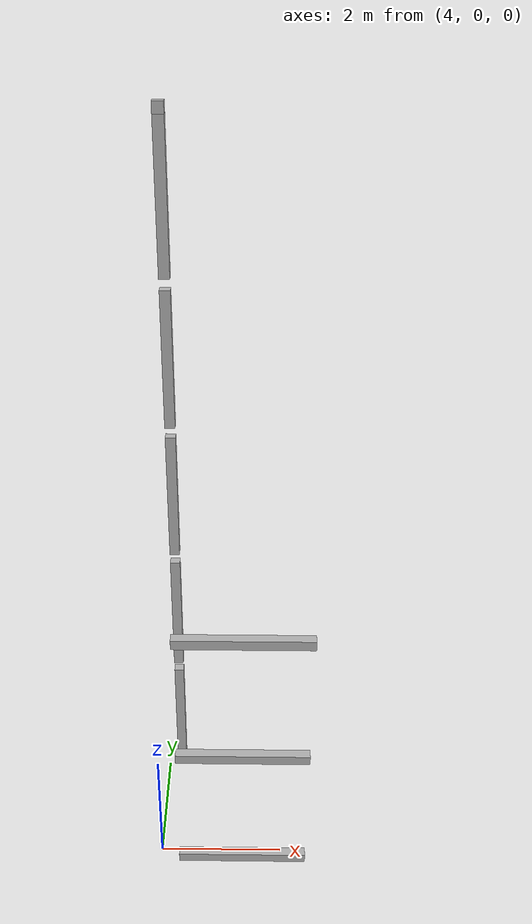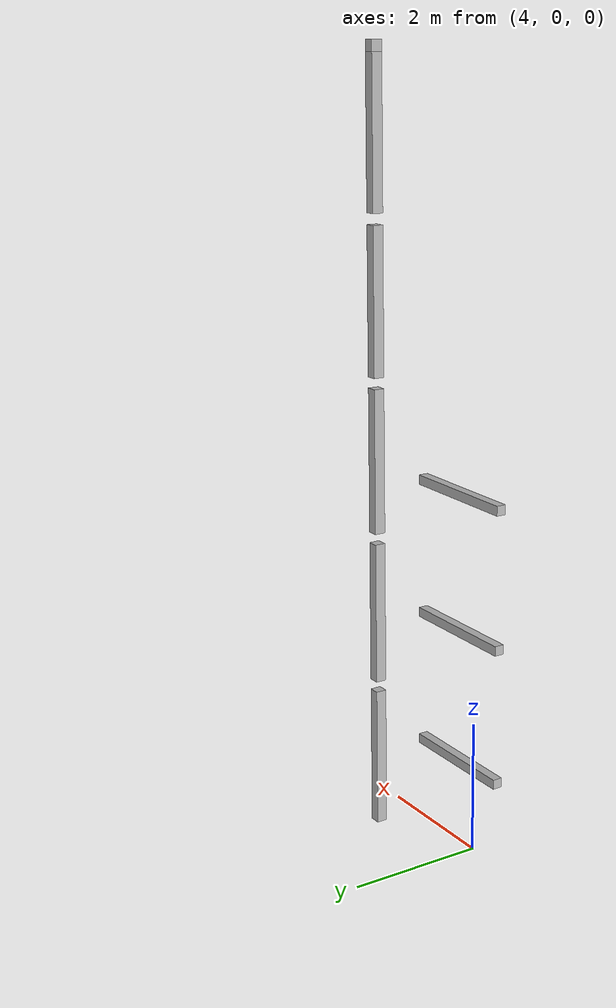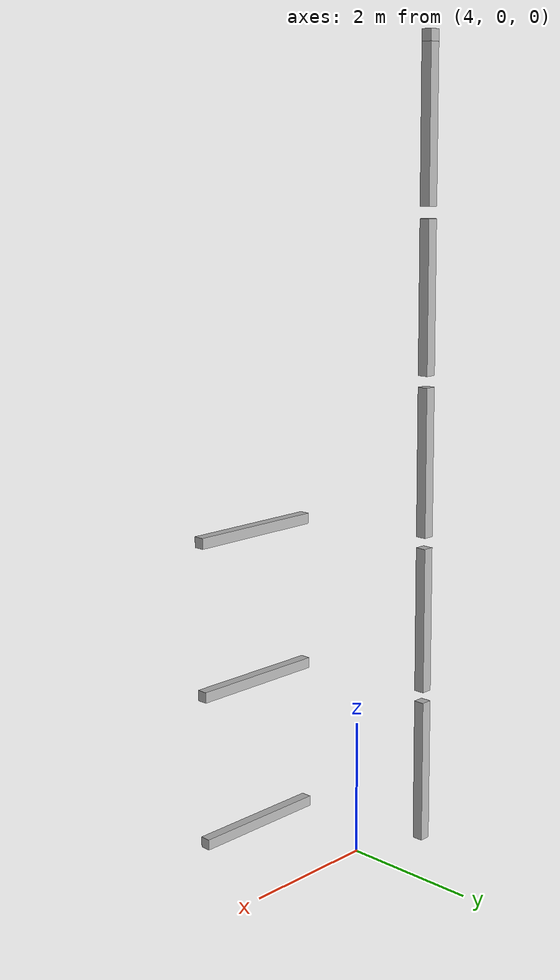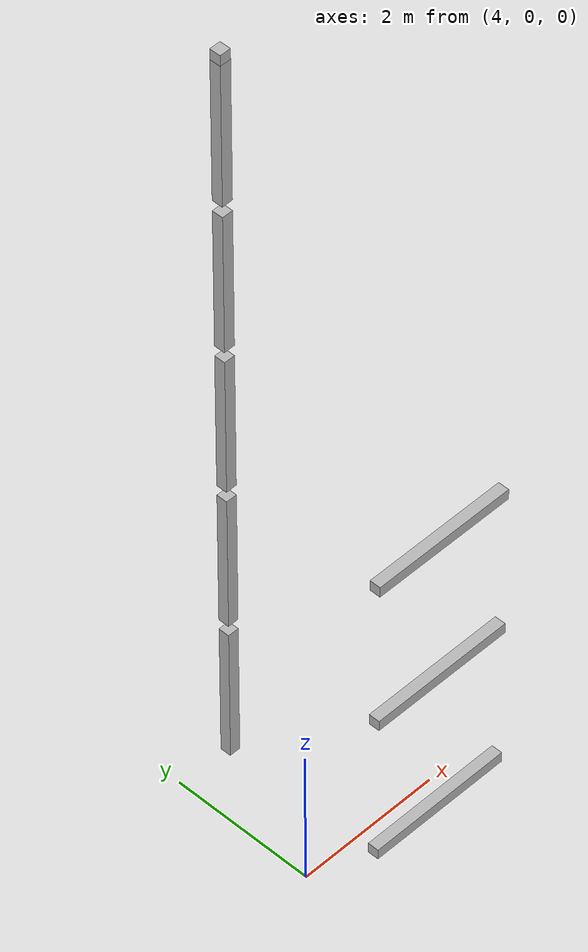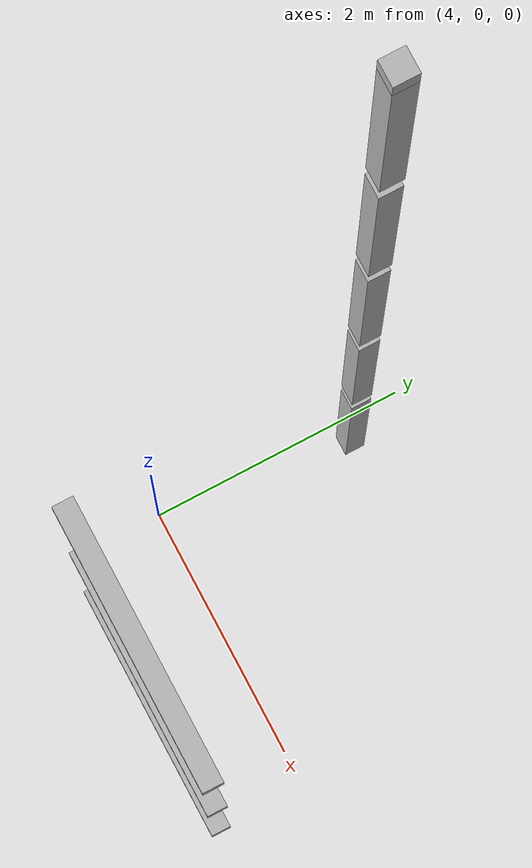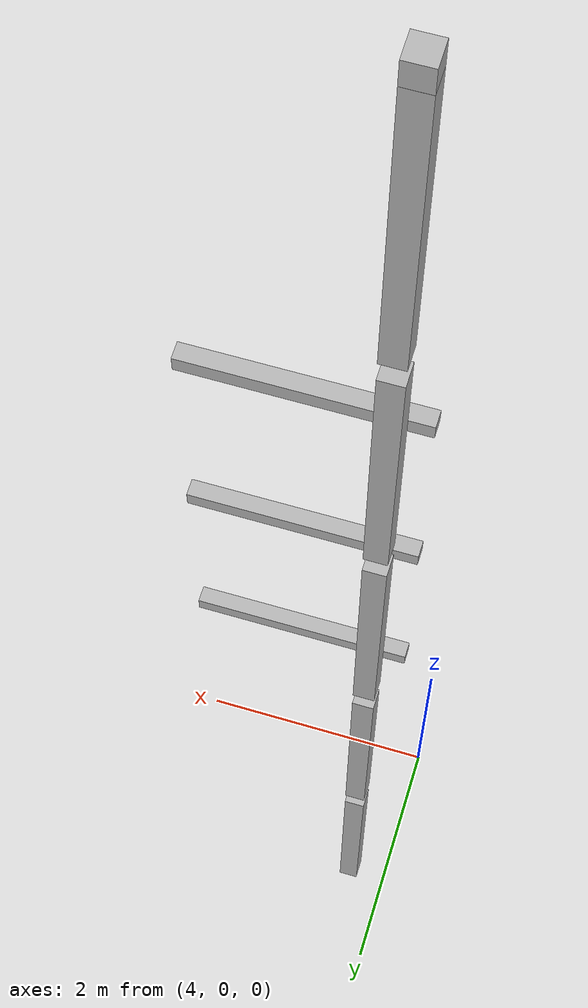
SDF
<sdf version="1.7">
 <world name="default">
  <model name="orthogonal_747_2.000.15_TS">
   <static>1</static>
   <link name="x_link_1_2_5">
    <inertial>
     <mass>1</mass>
     <inertia>
      <ixx>0.166667</ixx>
      <ixy>0</ixy>
      <ixz>0</ixz>
      <iyy>0.166667</iyy>
      <iyz>0</iyz>
      <izz>0.166667</izz>
     </inertia>
    </inertial>
    <pose>11.825 4.3 3.225 0 -0 0</pose>
    <visual name="visual_0">
     <laser_retro>1254</laser_retro>
     <geometry><box><size>2 1e-06 0.15</size></box></geometry>
     <material>
      <script><name>Gazebo/Grey</name><uri>file://media/materials/scripts/gazebo.material</uri></script>
      <shader type="pixel"><normal_map>__default__</normal_map></shader>
      <ambient>0.678 0.498 0.659 1</ambient>
      <diffuse>0.7 0.7 0.7 1</diffuse>
      <specular>0.01 0.01 0.01 1</specular>
      <emissive>0 0 0 1</emissive>
     </material>
     <pose>0 -0.075 0 0 -0 0</pose>
     <transparency>1</transparency>
    </visual>
    <visual name="visual_1">
     <laser_retro>1255</laser_retro>
     <geometry><box><size>2 1e-06 0.15</size></box></geometry>
     <material>
      <script><name>Gazebo/Grey</name><uri>file://media/materials/scripts/gazebo.material</uri></script>
      <shader type="pixel"><normal_map>__default__</normal_map></shader>
      <ambient>0.447 0.624 0.812 1</ambient>
      <diffuse>0.7 0.7 0.7 1</diffuse>
      <specular>0.01 0.01 0.01 1</specular>
      <emissive>0 0 0 1</emissive>
     </material>
     <pose>0 0.075 0 0 -0 0</pose>
     <transparency>1</transparency>
    </visual>
    <visual name="visual_2">
     <laser_retro>1256</laser_retro>
     <geometry><box><size>2 0.15 1e-06</size></box></geometry>
     <material>
      <script><name>Gazebo/Grey</name><uri>file://media/materials/scripts/gazebo.material</uri></script>
      <shader type="pixel"><normal_map>__default__</normal_map></shader>
      <ambient>0.988 0.686 0.243 1</ambient>
      <diffuse>0.7 0.7 0.7 1</diffuse>
      <specular>0.01 0.01 0.01 1</specular>
      <emissive>0 0 0 1</emissive>
     </material>
     <pose>0 0 -0.075 0 -0 0</pose>
     <transparency>1</transparency>
    </visual>
    <visual name="visual_3">
     <laser_retro>1257</laser_retro>
     <geometry><box><size>1e-06 0.15 0.15</size></box></geometry>
     <material>
      <script><name>Gazebo/Grey</name><uri>file://media/materials/scripts/gazebo.material</uri></script>
      <shader type="pixel"><normal_map>__default__</normal_map></shader>
      <ambient>0.988 0.914 0.31 1</ambient>
      <diffuse>0.7 0.7 0.7 1</diffuse>
      <specular>0.01 0.01 0.01 1</specular>
      <emissive>0 0 0 1</emissive>
     </material>
     <pose>1 0 0 0 -0 0</pose>
     <transparency>1</transparency>
    </visual>
    <visual name="visual_4">
     <laser_retro>1258</laser_retro>
     <geometry><box><size>2 0.15 1e-06</size></box></geometry>
     <material>
      <script><name>Gazebo/Grey</name><uri>file://media/materials/scripts/gazebo.material</uri></script>
      <shader type="pixel"><normal_map>__default__</normal_map></shader>
      <ambient>0.937 0.161 0.161 1</ambient>
      <diffuse>0.7 0.7 0.7 1</diffuse>
      <specular>0.01 0.01 0.01 1</specular>
      <emissive>0 0 0 1</emissive>
     </material>
     <pose>0 0 0.075 0 -0 0</pose>
     <transparency>1</transparency>
    </visual>
    <visual name="visual_5">
     <laser_retro>1259</laser_retro>
     <geometry><box><size>1e-06 0.15 0.15</size></box></geometry>
     <material>
      <script><name>Gazebo/Grey</name><uri>file://media/materials/scripts/gazebo.material</uri></script>
      <shader type="pixel"><normal_map>__default__</normal_map></shader>
      <ambient>0.541 0.886 0.204 1</ambient>
      <diffuse>0.7 0.7 0.7 1</diffuse>
      <specular>0.01 0.01 0.01 1</specular>
      <emissive>0 0 0 1</emissive>
     </material>
     <pose>-1 0 0 0 -0 0</pose>
     <transparency>1</transparency>
    </visual>
    <visual name="visual_texture">
     <geometry><box><size>1.9998 0.149985 0.149985</size></box></geometry>
     <material>
      <script>
       <uri>model://BASE_MODELS/simple_block_v2_textured/materials/scripts</uri>
       <uri>model://BASE_MODELS/simple_block_v2_textured/materials/textures</uri>
       <name>metal</name>
      </script>
     </material>
     <laser_retro>1260</laser_retro>
    </visual>
    <collision name="collision">
     <geometry><box><size>2 0.15 0.15</size></box></geometry>
     <surface>
      <friction>
       <ode><mu>1</mu><mu2>1</mu2><fdir1>0 0 0</fdir1><slip1>0</slip1><slip2>0</slip2></ode>
       <torsional>
        <coefficient>1</coefficient>
        <patch_radius>0</patch_radius>
        <surface_radius>0</surface_radius>
        <use_patch_radius>1</use_patch_radius>
        <ode><slip>0</slip></ode>
       </torsional>
      </friction>
      <bounce><restitution_coefficient>0</restitution_coefficient><threshold>1e+06</threshold></bounce>
      <contact>
       <collide_without_contact>0</collide_without_contact>
       <collide_without_contact_bitmask>1</collide_without_contact_bitmask>
       <collide_bitmask>1</collide_bitmask>
       <ode>
        <soft_cfm>0</soft_cfm>
        <soft_erp>0.2</soft_erp>
        <kp>1e+13</kp>
        <kd>1</kd>
        <max_vel>0.01</max_vel>
        <min_depth>0</min_depth>
       </ode>
       <bullet>
        <split_impulse>1</split_impulse>
        <split_impulse_penetration_threshold>-0.01</split_impulse_penetration_threshold>
        <soft_cfm>0</soft_cfm>
        <soft_erp>0.2</soft_erp>
        <kp>1e+13</kp>
        <kd>1</kd>
       </bullet>
      </contact>
     </surface>
    </collision>
   </link>
   <link name="x_link_2_2_5">
    <inertial>
     <mass>1</mass>
     <inertia>
      <ixx>0.166667</ixx>
      <ixy>0</ixy>
      <ixz>0</ixz>
      <iyy>0.166667</iyy>
      <iyz>0</iyz>
      <izz>0.166667</izz>
     </inertia>
    </inertial>
    <pose>11.825 4.3 5.375 0 -0 0</pose>
    <visual name="visual_0">
     <laser_retro>2157</laser_retro>
     <geometry><box><size>2 1e-06 0.15</size></box></geometry>
     <material>
      <script><name>Gazebo/Grey</name><uri>file://media/materials/scripts/gazebo.material</uri></script>
      <shader type="pixel"><normal_map>__default__</normal_map></shader>
      <ambient>0.678 0.498 0.659 1</ambient>
      <diffuse>0.7 0.7 0.7 1</diffuse>
      <specular>0.01 0.01 0.01 1</specular>
      <emissive>0 0 0 1</emissive>
     </material>
     <pose>0 -0.075 0 0 -0 0</pose>
     <transparency>1</transparency>
    </visual>
    <visual name="visual_1">
     <laser_retro>2158</laser_retro>
     <geometry><box><size>2 1e-06 0.15</size></box></geometry>
     <material>
      <script><name>Gazebo/Grey</name><uri>file://media/materials/scripts/gazebo.material</uri></script>
      <shader type="pixel"><normal_map>__default__</normal_map></shader>
      <ambient>0.447 0.624 0.812 1</ambient>
      <diffuse>0.7 0.7 0.7 1</diffuse>
      <specular>0.01 0.01 0.01 1</specular>
      <emissive>0 0 0 1</emissive>
     </material>
     <pose>0 0.075 0 0 -0 0</pose>
     <transparency>1</transparency>
    </visual>
    <visual name="visual_2">
     <laser_retro>2159</laser_retro>
     <geometry><box><size>2 0.15 1e-06</size></box></geometry>
     <material>
      <script><name>Gazebo/Grey</name><uri>file://media/materials/scripts/gazebo.material</uri></script>
      <shader type="pixel"><normal_map>__default__</normal_map></shader>
      <ambient>0.988 0.686 0.243 1</ambient>
      <diffuse>0.7 0.7 0.7 1</diffuse>
      <specular>0.01 0.01 0.01 1</specular>
      <emissive>0 0 0 1</emissive>
     </material>
     <pose>0 0 -0.075 0 -0 0</pose>
     <transparency>1</transparency>
    </visual>
    <visual name="visual_3">
     <laser_retro>2160</laser_retro>
     <geometry><box><size>1e-06 0.15 0.15</size></box></geometry>
     <material>
      <script><name>Gazebo/Grey</name><uri>file://media/materials/scripts/gazebo.material</uri></script>
      <shader type="pixel"><normal_map>__default__</normal_map></shader>
      <ambient>0.988 0.914 0.31 1</ambient>
      <diffuse>0.7 0.7 0.7 1</diffuse>
      <specular>0.01 0.01 0.01 1</specular>
      <emissive>0 0 0 1</emissive>
     </material>
     <pose>1 0 0 0 -0 0</pose>
     <transparency>1</transparency>
    </visual>
    <visual name="visual_4">
     <laser_retro>2161</laser_retro>
     <geometry><box><size>2 0.15 1e-06</size></box></geometry>
     <material>
      <script><name>Gazebo/Grey</name><uri>file://media/materials/scripts/gazebo.material</uri></script>
      <shader type="pixel"><normal_map>__default__</normal_map></shader>
      <ambient>0.937 0.161 0.161 1</ambient>
      <diffuse>0.7 0.7 0.7 1</diffuse>
      <specular>0.01 0.01 0.01 1</specular>
      <emissive>0 0 0 1</emissive>
     </material>
     <pose>0 0 0.075 0 -0 0</pose>
     <transparency>1</transparency>
    </visual>
    <visual name="visual_5">
     <laser_retro>2162</laser_retro>
     <geometry><box><size>1e-06 0.15 0.15</size></box></geometry>
     <material>
      <script><name>Gazebo/Grey</name><uri>file://media/materials/scripts/gazebo.material</uri></script>
      <shader type="pixel"><normal_map>__default__</normal_map></shader>
      <ambient>0.541 0.886 0.204 1</ambient>
      <diffuse>0.7 0.7 0.7 1</diffuse>
      <specular>0.01 0.01 0.01 1</specular>
      <emissive>0 0 0 1</emissive>
     </material>
     <pose>-1 0 0 0 -0 0</pose>
     <transparency>1</transparency>
    </visual>
    <visual name="visual_texture">
     <geometry><box><size>1.9998 0.149985 0.149985</size></box></geometry>
     <material>
      <script>
       <uri>model://BASE_MODELS/simple_block_v2_textured/materials/scripts</uri>
       <uri>model://BASE_MODELS/simple_block_v2_textured/materials/textures</uri>
       <name>metal</name>
      </script>
     </material>
     <laser_retro>2163</laser_retro>
    </visual>
    <collision name="collision">
     <geometry><box><size>2 0.15 0.15</size></box></geometry>
     <surface>
      <friction>
       <ode><mu>1</mu><mu2>1</mu2><fdir1>0 0 0</fdir1><slip1>0</slip1><slip2>0</slip2></ode>
       <torsional>
        <coefficient>1</coefficient>
        <patch_radius>0</patch_radius>
        <surface_radius>0</surface_radius>
        <use_patch_radius>1</use_patch_radius>
        <ode><slip>0</slip></ode>
       </torsional>
      </friction>
      <bounce><restitution_coefficient>0</restitution_coefficient><threshold>1e+06</threshold></bounce>
      <contact>
       <collide_without_contact>0</collide_without_contact>
       <collide_without_contact_bitmask>1</collide_without_contact_bitmask>
       <collide_bitmask>1</collide_bitmask>
       <ode>
        <soft_cfm>0</soft_cfm>
        <soft_erp>0.2</soft_erp>
        <kp>1e+13</kp>
        <kd>1</kd>
        <max_vel>0.01</max_vel>
        <min_depth>0</min_depth>
       </ode>
       <bullet>
        <split_impulse>1</split_impulse>
        <split_impulse_penetration_threshold>-0.01</split_impulse_penetration_threshold>
        <soft_cfm>0</soft_cfm>
        <soft_erp>0.2</soft_erp>
        <kp>1e+13</kp>
        <kd>1</kd>
       </bullet>
      </contact>
     </surface>
    </collision>
   </link>
   <link name="z_link_2_3_5">
    <inertial>
     <mass>1</mass>
     <inertia>
      <ixx>0.166667</ixx>
      <ixy>0</ixy>
      <ixz>0</ixz>
      <iyy>0.166667</iyy>
      <iyz>0</iyz>
      <izz>0.166667</izz>
     </inertia>
    </inertial>
    <pose>10.75 6.45 4.3 0 -0 0</pose>
    <visual name="visual_0">
     <laser_retro>2346</laser_retro>
     <geometry><box><size>0.15 1e-06 2</size></box></geometry>
     <material>
      <script><name>Gazebo/Grey</name><uri>file://media/materials/scripts/gazebo.material</uri></script>
      <shader type="pixel"><normal_map>__default__</normal_map></shader>
      <ambient>0.678 0.498 0.659 1</ambient>
      <diffuse>0.7 0.7 0.7 1</diffuse>
      <specular>0.01 0.01 0.01 1</specular>
      <emissive>0 0 0 1</emissive>
     </material>
     <pose>0 -0.075 0 0 -0 0</pose>
     <transparency>1</transparency>
    </visual>
    <visual name="visual_1">
     <laser_retro>2347</laser_retro>
     <geometry><box><size>0.15 1e-06 2</size></box></geometry>
     <material>
      <script><name>Gazebo/Grey</name><uri>file://media/materials/scripts/gazebo.material</uri></script>
      <shader type="pixel"><normal_map>__default__</normal_map></shader>
      <ambient>0.447 0.624 0.812 1</ambient>
      <diffuse>0.7 0.7 0.7 1</diffuse>
      <specular>0.01 0.01 0.01 1</specular>
      <emissive>0 0 0 1</emissive>
     </material>
     <pose>0 0.075 0 0 -0 0</pose>
     <transparency>1</transparency>
    </visual>
    <visual name="visual_2">
     <laser_retro>2348</laser_retro>
     <geometry><box><size>0.15 0.15 1e-06</size></box></geometry>
     <material>
      <script><name>Gazebo/Grey</name><uri>file://media/materials/scripts/gazebo.material</uri></script>
      <shader type="pixel"><normal_map>__default__</normal_map></shader>
      <ambient>0.988 0.686 0.243 1</ambient>
      <diffuse>0.7 0.7 0.7 1</diffuse>
      <specular>0.01 0.01 0.01 1</specular>
      <emissive>0 0 0 1</emissive>
     </material>
     <pose>0 0 -1 0 -0 0</pose>
     <transparency>1</transparency>
    </visual>
    <visual name="visual_3">
     <laser_retro>2349</laser_retro>
     <geometry><box><size>1e-06 0.15 2</size></box></geometry>
     <material>
      <script><name>Gazebo/Grey</name><uri>file://media/materials/scripts/gazebo.material</uri></script>
      <shader type="pixel"><normal_map>__default__</normal_map></shader>
      <ambient>0.988 0.914 0.31 1</ambient>
      <diffuse>0.7 0.7 0.7 1</diffuse>
      <specular>0.01 0.01 0.01 1</specular>
      <emissive>0 0 0 1</emissive>
     </material>
     <pose>0.075 0 0 0 -0 0</pose>
     <transparency>1</transparency>
    </visual>
    <visual name="visual_4">
     <laser_retro>2350</laser_retro>
     <geometry><box><size>0.15 0.15 1e-06</size></box></geometry>
     <material>
      <script><name>Gazebo/Grey</name><uri>file://media/materials/scripts/gazebo.material</uri></script>
      <shader type="pixel"><normal_map>__default__</normal_map></shader>
      <ambient>0.937 0.161 0.161 1</ambient>
      <diffuse>0.7 0.7 0.7 1</diffuse>
      <specular>0.01 0.01 0.01 1</specular>
      <emissive>0 0 0 1</emissive>
     </material>
     <pose>0 0 1 0 -0 0</pose>
     <transparency>1</transparency>
    </visual>
    <visual name="visual_5">
     <laser_retro>2351</laser_retro>
     <geometry><box><size>1e-06 0.15 2</size></box></geometry>
     <material>
      <script><name>Gazebo/Grey</name><uri>file://media/materials/scripts/gazebo.material</uri></script>
      <shader type="pixel"><normal_map>__default__</normal_map></shader>
      <ambient>0.541 0.886 0.204 1</ambient>
      <diffuse>0.7 0.7 0.7 1</diffuse>
      <specular>0.01 0.01 0.01 1</specular>
      <emissive>0 0 0 1</emissive>
     </material>
     <pose>-0.075 0 0 0 -0 0</pose>
     <transparency>1</transparency>
    </visual>
    <visual name="visual_texture">
     <geometry><box><size>0.149985 0.149985 1.9998</size></box></geometry>
     <material>
      <script>
       <uri>model://BASE_MODELS/simple_block_v2_textured/materials/scripts</uri>
       <uri>model://BASE_MODELS/simple_block_v2_textured/materials/textures</uri>
       <name>metal</name>
      </script>
     </material>
     <laser_retro>2352</laser_retro>
    </visual>
    <collision name="collision">
     <geometry><box><size>0.15 0.15 2</size></box></geometry>
     <surface>
      <friction>
       <ode><mu>1</mu><mu2>1</mu2><fdir1>0 0 0</fdir1><slip1>0</slip1><slip2>0</slip2></ode>
       <torsional>
        <coefficient>1</coefficient>
        <patch_radius>0</patch_radius>
        <surface_radius>0</surface_radius>
        <use_patch_radius>1</use_patch_radius>
        <ode><slip>0</slip></ode>
       </torsional>
      </friction>
      <bounce><restitution_coefficient>0</restitution_coefficient><threshold>1e+06</threshold></bounce>
      <contact>
       <collide_without_contact>0</collide_without_contact>
       <collide_without_contact_bitmask>1</collide_without_contact_bitmask>
       <collide_bitmask>1</collide_bitmask>
       <ode>
        <soft_cfm>0</soft_cfm>
        <soft_erp>0.2</soft_erp>
        <kp>1e+13</kp>
        <kd>1</kd>
        <max_vel>0.01</max_vel>
        <min_depth>0</min_depth>
       </ode>
       <bullet>
        <split_impulse>1</split_impulse>
        <split_impulse_penetration_threshold>-0.01</split_impulse_penetration_threshold>
        <soft_cfm>0</soft_cfm>
        <soft_erp>0.2</soft_erp>
        <kp>1e+13</kp>
        <kd>1</kd>
       </bullet>
      </contact>
     </surface>
    </collision>
   </link>
   <link name="x_link_3_2_5">
    <inertial>
     <mass>1</mass>
     <inertia>
      <ixx>0.166667</ixx>
      <ixy>0</ixy>
      <ixz>0</ixz>
      <iyy>0.166667</iyy>
      <iyz>0</iyz>
      <izz>0.166667</izz>
     </inertia>
    </inertial>
    <pose>11.825 4.3 7.525 0 -0 0</pose>
    <visual name="visual_0">
     <laser_retro>3060</laser_retro>
     <geometry><box><size>2 1e-06 0.15</size></box></geometry>
     <material>
      <script><name>Gazebo/Grey</name><uri>file://media/materials/scripts/gazebo.material</uri></script>
      <shader type="pixel"><normal_map>__default__</normal_map></shader>
      <ambient>0.678 0.498 0.659 1</ambient>
      <diffuse>0.7 0.7 0.7 1</diffuse>
      <specular>0.01 0.01 0.01 1</specular>
      <emissive>0 0 0 1</emissive>
     </material>
     <pose>0 -0.075 0 0 -0 0</pose>
     <transparency>1</transparency>
    </visual>
    <visual name="visual_1">
     <laser_retro>3061</laser_retro>
     <geometry><box><size>2 1e-06 0.15</size></box></geometry>
     <material>
      <script><name>Gazebo/Grey</name><uri>file://media/materials/scripts/gazebo.material</uri></script>
      <shader type="pixel"><normal_map>__default__</normal_map></shader>
      <ambient>0.447 0.624 0.812 1</ambient>
      <diffuse>0.7 0.7 0.7 1</diffuse>
      <specular>0.01 0.01 0.01 1</specular>
      <emissive>0 0 0 1</emissive>
     </material>
     <pose>0 0.075 0 0 -0 0</pose>
     <transparency>1</transparency>
    </visual>
    <visual name="visual_2">
     <laser_retro>3062</laser_retro>
     <geometry><box><size>2 0.15 1e-06</size></box></geometry>
     <material>
      <script><name>Gazebo/Grey</name><uri>file://media/materials/scripts/gazebo.material</uri></script>
      <shader type="pixel"><normal_map>__default__</normal_map></shader>
      <ambient>0.988 0.686 0.243 1</ambient>
      <diffuse>0.7 0.7 0.7 1</diffuse>
      <specular>0.01 0.01 0.01 1</specular>
      <emissive>0 0 0 1</emissive>
     </material>
     <pose>0 0 -0.075 0 -0 0</pose>
     <transparency>1</transparency>
    </visual>
    <visual name="visual_3">
     <laser_retro>3063</laser_retro>
     <geometry><box><size>1e-06 0.15 0.15</size></box></geometry>
     <material>
      <script><name>Gazebo/Grey</name><uri>file://media/materials/scripts/gazebo.material</uri></script>
      <shader type="pixel"><normal_map>__default__</normal_map></shader>
      <ambient>0.988 0.914 0.31 1</ambient>
      <diffuse>0.7 0.7 0.7 1</diffuse>
      <specular>0.01 0.01 0.01 1</specular>
      <emissive>0 0 0 1</emissive>
     </material>
     <pose>1 0 0 0 -0 0</pose>
     <transparency>1</transparency>
    </visual>
    <visual name="visual_4">
     <laser_retro>3064</laser_retro>
     <geometry><box><size>2 0.15 1e-06</size></box></geometry>
     <material>
      <script><name>Gazebo/Grey</name><uri>file://media/materials/scripts/gazebo.material</uri></script>
      <shader type="pixel"><normal_map>__default__</normal_map></shader>
      <ambient>0.937 0.161 0.161 1</ambient>
      <diffuse>0.7 0.7 0.7 1</diffuse>
      <specular>0.01 0.01 0.01 1</specular>
      <emissive>0 0 0 1</emissive>
     </material>
     <pose>0 0 0.075 0 -0 0</pose>
     <transparency>1</transparency>
    </visual>
    <visual name="visual_5">
     <laser_retro>3065</laser_retro>
     <geometry><box><size>1e-06 0.15 0.15</size></box></geometry>
     <material>
      <script><name>Gazebo/Grey</name><uri>file://media/materials/scripts/gazebo.material</uri></script>
      <shader type="pixel"><normal_map>__default__</normal_map></shader>
      <ambient>0.541 0.886 0.204 1</ambient>
      <diffuse>0.7 0.7 0.7 1</diffuse>
      <specular>0.01 0.01 0.01 1</specular>
      <emissive>0 0 0 1</emissive>
     </material>
     <pose>-1 0 0 0 -0 0</pose>
     <transparency>1</transparency>
    </visual>
    <visual name="visual_texture">
     <geometry><box><size>1.9998 0.149985 0.149985</size></box></geometry>
     <material>
      <script>
       <uri>model://BASE_MODELS/simple_block_v2_textured/materials/scripts</uri>
       <uri>model://BASE_MODELS/simple_block_v2_textured/materials/textures</uri>
       <name>metal</name>
      </script>
     </material>
     <laser_retro>3066</laser_retro>
    </visual>
    <collision name="collision">
     <geometry><box><size>2 0.15 0.15</size></box></geometry>
     <surface>
      <friction>
       <ode><mu>1</mu><mu2>1</mu2><fdir1>0 0 0</fdir1><slip1>0</slip1><slip2>0</slip2></ode>
       <torsional>
        <coefficient>1</coefficient>
        <patch_radius>0</patch_radius>
        <surface_radius>0</surface_radius>
        <use_patch_radius>1</use_patch_radius>
        <ode><slip>0</slip></ode>
       </torsional>
      </friction>
      <bounce><restitution_coefficient>0</restitution_coefficient><threshold>1e+06</threshold></bounce>
      <contact>
       <collide_without_contact>0</collide_without_contact>
       <collide_without_contact_bitmask>1</collide_without_contact_bitmask>
       <collide_bitmask>1</collide_bitmask>
       <ode>
        <soft_cfm>0</soft_cfm>
        <soft_erp>0.2</soft_erp>
        <kp>1e+13</kp>
        <kd>1</kd>
        <max_vel>0.01</max_vel>
        <min_depth>0</min_depth>
       </ode>
       <bullet>
        <split_impulse>1</split_impulse>
        <split_impulse_penetration_threshold>-0.01</split_impulse_penetration_threshold>
        <soft_cfm>0</soft_cfm>
        <soft_erp>0.2</soft_erp>
        <kp>1e+13</kp>
        <kd>1</kd>
       </bullet>
      </contact>
     </surface>
    </collision>
   </link>
   <link name="z_link_3_3_5">
    <inertial>
     <mass>1</mass>
     <inertia>
      <ixx>0.166667</ixx>
      <ixy>0</ixy>
      <ixz>0</ixz>
      <iyy>0.166667</iyy>
      <iyz>0</iyz>
      <izz>0.166667</izz>
     </inertia>
    </inertial>
    <pose>10.75 6.45 6.45 0 -0 0</pose>
    <visual name="visual_0">
     <laser_retro>3249</laser_retro>
     <geometry><box><size>0.15 1e-06 2</size></box></geometry>
     <material>
      <script><name>Gazebo/Grey</name><uri>file://media/materials/scripts/gazebo.material</uri></script>
      <shader type="pixel"><normal_map>__default__</normal_map></shader>
      <ambient>0.678 0.498 0.659 1</ambient>
      <diffuse>0.7 0.7 0.7 1</diffuse>
      <specular>0.01 0.01 0.01 1</specular>
      <emissive>0 0 0 1</emissive>
     </material>
     <pose>0 -0.075 0 0 -0 0</pose>
     <transparency>1</transparency>
    </visual>
    <visual name="visual_1">
     <laser_retro>3250</laser_retro>
     <geometry><box><size>0.15 1e-06 2</size></box></geometry>
     <material>
      <script><name>Gazebo/Grey</name><uri>file://media/materials/scripts/gazebo.material</uri></script>
      <shader type="pixel"><normal_map>__default__</normal_map></shader>
      <ambient>0.447 0.624 0.812 1</ambient>
      <diffuse>0.7 0.7 0.7 1</diffuse>
      <specular>0.01 0.01 0.01 1</specular>
      <emissive>0 0 0 1</emissive>
     </material>
     <pose>0 0.075 0 0 -0 0</pose>
     <transparency>1</transparency>
    </visual>
    <visual name="visual_2">
     <laser_retro>3251</laser_retro>
     <geometry><box><size>0.15 0.15 1e-06</size></box></geometry>
     <material>
      <script><name>Gazebo/Grey</name><uri>file://media/materials/scripts/gazebo.material</uri></script>
      <shader type="pixel"><normal_map>__default__</normal_map></shader>
      <ambient>0.988 0.686 0.243 1</ambient>
      <diffuse>0.7 0.7 0.7 1</diffuse>
      <specular>0.01 0.01 0.01 1</specular>
      <emissive>0 0 0 1</emissive>
     </material>
     <pose>0 0 -1 0 -0 0</pose>
     <transparency>1</transparency>
    </visual>
    <visual name="visual_3">
     <laser_retro>3252</laser_retro>
     <geometry><box><size>1e-06 0.15 2</size></box></geometry>
     <material>
      <script><name>Gazebo/Grey</name><uri>file://media/materials/scripts/gazebo.material</uri></script>
      <shader type="pixel"><normal_map>__default__</normal_map></shader>
      <ambient>0.988 0.914 0.31 1</ambient>
      <diffuse>0.7 0.7 0.7 1</diffuse>
      <specular>0.01 0.01 0.01 1</specular>
      <emissive>0 0 0 1</emissive>
     </material>
     <pose>0.075 0 0 0 -0 0</pose>
     <transparency>1</transparency>
    </visual>
    <visual name="visual_4">
     <laser_retro>3253</laser_retro>
     <geometry><box><size>0.15 0.15 1e-06</size></box></geometry>
     <material>
      <script><name>Gazebo/Grey</name><uri>file://media/materials/scripts/gazebo.material</uri></script>
      <shader type="pixel"><normal_map>__default__</normal_map></shader>
      <ambient>0.937 0.161 0.161 1</ambient>
      <diffuse>0.7 0.7 0.7 1</diffuse>
      <specular>0.01 0.01 0.01 1</specular>
      <emissive>0 0 0 1</emissive>
     </material>
     <pose>0 0 1 0 -0 0</pose>
     <transparency>1</transparency>
    </visual>
    <visual name="visual_5">
     <laser_retro>3254</laser_retro>
     <geometry><box><size>1e-06 0.15 2</size></box></geometry>
     <material>
      <script><name>Gazebo/Grey</name><uri>file://media/materials/scripts/gazebo.material</uri></script>
      <shader type="pixel"><normal_map>__default__</normal_map></shader>
      <ambient>0.541 0.886 0.204 1</ambient>
      <diffuse>0.7 0.7 0.7 1</diffuse>
      <specular>0.01 0.01 0.01 1</specular>
      <emissive>0 0 0 1</emissive>
     </material>
     <pose>-0.075 0 0 0 -0 0</pose>
     <transparency>1</transparency>
    </visual>
    <visual name="visual_texture">
     <geometry><box><size>0.149985 0.149985 1.9998</size></box></geometry>
     <material>
      <script>
       <uri>model://BASE_MODELS/simple_block_v2_textured/materials/scripts</uri>
       <uri>model://BASE_MODELS/simple_block_v2_textured/materials/textures</uri>
       <name>metal</name>
      </script>
     </material>
     <laser_retro>3255</laser_retro>
    </visual>
    <collision name="collision">
     <geometry><box><size>0.15 0.15 2</size></box></geometry>
     <surface>
      <friction>
       <ode><mu>1</mu><mu2>1</mu2><fdir1>0 0 0</fdir1><slip1>0</slip1><slip2>0</slip2></ode>
       <torsional>
        <coefficient>1</coefficient>
        <patch_radius>0</patch_radius>
        <surface_radius>0</surface_radius>
        <use_patch_radius>1</use_patch_radius>
        <ode><slip>0</slip></ode>
       </torsional>
      </friction>
      <bounce><restitution_coefficient>0</restitution_coefficient><threshold>1e+06</threshold></bounce>
      <contact>
       <collide_without_contact>0</collide_without_contact>
       <collide_without_contact_bitmask>1</collide_without_contact_bitmask>
       <collide_bitmask>1</collide_bitmask>
       <ode>
        <soft_cfm>0</soft_cfm>
        <soft_erp>0.2</soft_erp>
        <kp>1e+13</kp>
        <kd>1</kd>
        <max_vel>0.01</max_vel>
        <min_depth>0</min_depth>
       </ode>
       <bullet>
        <split_impulse>1</split_impulse>
        <split_impulse_penetration_threshold>-0.01</split_impulse_penetration_threshold>
        <soft_cfm>0</soft_cfm>
        <soft_erp>0.2</soft_erp>
        <kp>1e+13</kp>
        <kd>1</kd>
       </bullet>
      </contact>
     </surface>
    </collision>
   </link>
   <link name="z_link_4_3_5">
    <inertial>
     <mass>1</mass>
     <inertia>
      <ixx>0.166667</ixx>
      <ixy>0</ixy>
      <ixz>0</ixz>
      <iyy>0.166667</iyy>
      <iyz>0</iyz>
      <izz>0.166667</izz>
     </inertia>
    </inertial>
    <pose>10.75 6.45 8.6 0 -0 0</pose>
    <visual name="visual_0">
     <laser_retro>4152</laser_retro>
     <geometry><box><size>0.15 1e-06 2</size></box></geometry>
     <material>
      <script><name>Gazebo/Grey</name><uri>file://media/materials/scripts/gazebo.material</uri></script>
      <shader type="pixel"><normal_map>__default__</normal_map></shader>
      <ambient>0.678 0.498 0.659 1</ambient>
      <diffuse>0.7 0.7 0.7 1</diffuse>
      <specular>0.01 0.01 0.01 1</specular>
      <emissive>0 0 0 1</emissive>
     </material>
     <pose>0 -0.075 0 0 -0 0</pose>
     <transparency>1</transparency>
    </visual>
    <visual name="visual_1">
     <laser_retro>4153</laser_retro>
     <geometry><box><size>0.15 1e-06 2</size></box></geometry>
     <material>
      <script><name>Gazebo/Grey</name><uri>file://media/materials/scripts/gazebo.material</uri></script>
      <shader type="pixel"><normal_map>__default__</normal_map></shader>
      <ambient>0.447 0.624 0.812 1</ambient>
      <diffuse>0.7 0.7 0.7 1</diffuse>
      <specular>0.01 0.01 0.01 1</specular>
      <emissive>0 0 0 1</emissive>
     </material>
     <pose>0 0.075 0 0 -0 0</pose>
     <transparency>1</transparency>
    </visual>
    <visual name="visual_2">
     <laser_retro>4154</laser_retro>
     <geometry><box><size>0.15 0.15 1e-06</size></box></geometry>
     <material>
      <script><name>Gazebo/Grey</name><uri>file://media/materials/scripts/gazebo.material</uri></script>
      <shader type="pixel"><normal_map>__default__</normal_map></shader>
      <ambient>0.988 0.686 0.243 1</ambient>
      <diffuse>0.7 0.7 0.7 1</diffuse>
      <specular>0.01 0.01 0.01 1</specular>
      <emissive>0 0 0 1</emissive>
     </material>
     <pose>0 0 -1 0 -0 0</pose>
     <transparency>1</transparency>
    </visual>
    <visual name="visual_3">
     <laser_retro>4155</laser_retro>
     <geometry><box><size>1e-06 0.15 2</size></box></geometry>
     <material>
      <script><name>Gazebo/Grey</name><uri>file://media/materials/scripts/gazebo.material</uri></script>
      <shader type="pixel"><normal_map>__default__</normal_map></shader>
      <ambient>0.988 0.914 0.31 1</ambient>
      <diffuse>0.7 0.7 0.7 1</diffuse>
      <specular>0.01 0.01 0.01 1</specular>
      <emissive>0 0 0 1</emissive>
     </material>
     <pose>0.075 0 0 0 -0 0</pose>
     <transparency>1</transparency>
    </visual>
    <visual name="visual_4">
     <laser_retro>4156</laser_retro>
     <geometry><box><size>0.15 0.15 1e-06</size></box></geometry>
     <material>
      <script><name>Gazebo/Grey</name><uri>file://media/materials/scripts/gazebo.material</uri></script>
      <shader type="pixel"><normal_map>__default__</normal_map></shader>
      <ambient>0.937 0.161 0.161 1</ambient>
      <diffuse>0.7 0.7 0.7 1</diffuse>
      <specular>0.01 0.01 0.01 1</specular>
      <emissive>0 0 0 1</emissive>
     </material>
     <pose>0 0 1 0 -0 0</pose>
     <transparency>1</transparency>
    </visual>
    <visual name="visual_5">
     <laser_retro>4157</laser_retro>
     <geometry><box><size>1e-06 0.15 2</size></box></geometry>
     <material>
      <script><name>Gazebo/Grey</name><uri>file://media/materials/scripts/gazebo.material</uri></script>
      <shader type="pixel"><normal_map>__default__</normal_map></shader>
      <ambient>0.541 0.886 0.204 1</ambient>
      <diffuse>0.7 0.7 0.7 1</diffuse>
      <specular>0.01 0.01 0.01 1</specular>
      <emissive>0 0 0 1</emissive>
     </material>
     <pose>-0.075 0 0 0 -0 0</pose>
     <transparency>1</transparency>
    </visual>
    <visual name="visual_texture">
     <geometry><box><size>0.149985 0.149985 1.9998</size></box></geometry>
     <material>
      <script>
       <uri>model://BASE_MODELS/simple_block_v2_textured/materials/scripts</uri>
       <uri>model://BASE_MODELS/simple_block_v2_textured/materials/textures</uri>
       <name>metal</name>
      </script>
     </material>
     <laser_retro>4158</laser_retro>
    </visual>
    <collision name="collision">
     <geometry><box><size>0.15 0.15 2</size></box></geometry>
     <surface>
      <friction>
       <ode><mu>1</mu><mu2>1</mu2><fdir1>0 0 0</fdir1><slip1>0</slip1><slip2>0</slip2></ode>
       <torsional>
        <coefficient>1</coefficient>
        <patch_radius>0</patch_radius>
        <surface_radius>0</surface_radius>
        <use_patch_radius>1</use_patch_radius>
        <ode><slip>0</slip></ode>
       </torsional>
      </friction>
      <bounce><restitution_coefficient>0</restitution_coefficient><threshold>1e+06</threshold></bounce>
      <contact>
       <collide_without_contact>0</collide_without_contact>
       <collide_without_contact_bitmask>1</collide_without_contact_bitmask>
       <collide_bitmask>1</collide_bitmask>
       <ode>
        <soft_cfm>0</soft_cfm>
        <soft_erp>0.2</soft_erp>
        <kp>1e+13</kp>
        <kd>1</kd>
        <max_vel>0.01</max_vel>
        <min_depth>0</min_depth>
       </ode>
       <bullet>
        <split_impulse>1</split_impulse>
        <split_impulse_penetration_threshold>-0.01</split_impulse_penetration_threshold>
        <soft_cfm>0</soft_cfm>
        <soft_erp>0.2</soft_erp>
        <kp>1e+13</kp>
        <kd>1</kd>
       </bullet>
      </contact>
     </surface>
    </collision>
   </link>
   <link name="z_link_5_3_5">
    <inertial>
     <mass>1</mass>
     <inertia>
      <ixx>0.166667</ixx>
      <ixy>0</ixy>
      <ixz>0</ixz>
      <iyy>0.166667</iyy>
      <iyz>0</iyz>
      <izz>0.166667</izz>
     </inertia>
    </inertial>
    <pose>10.75 6.45 10.75 0 -0 0</pose>
    <visual name="visual_0">
     <laser_retro>5055</laser_retro>
     <geometry><box><size>0.15 1e-06 2</size></box></geometry>
     <material>
      <script><name>Gazebo/Grey</name><uri>file://media/materials/scripts/gazebo.material</uri></script>
      <shader type="pixel"><normal_map>__default__</normal_map></shader>
      <ambient>0.678 0.498 0.659 1</ambient>
      <diffuse>0.7 0.7 0.7 1</diffuse>
      <specular>0.01 0.01 0.01 1</specular>
      <emissive>0 0 0 1</emissive>
     </material>
     <pose>0 -0.075 0 0 -0 0</pose>
     <transparency>1</transparency>
    </visual>
    <visual name="visual_1">
     <laser_retro>5056</laser_retro>
     <geometry><box><size>0.15 1e-06 2</size></box></geometry>
     <material>
      <script><name>Gazebo/Grey</name><uri>file://media/materials/scripts/gazebo.material</uri></script>
      <shader type="pixel"><normal_map>__default__</normal_map></shader>
      <ambient>0.447 0.624 0.812 1</ambient>
      <diffuse>0.7 0.7 0.7 1</diffuse>
      <specular>0.01 0.01 0.01 1</specular>
      <emissive>0 0 0 1</emissive>
     </material>
     <pose>0 0.075 0 0 -0 0</pose>
     <transparency>1</transparency>
    </visual>
    <visual name="visual_2">
     <laser_retro>5057</laser_retro>
     <geometry><box><size>0.15 0.15 1e-06</size></box></geometry>
     <material>
      <script><name>Gazebo/Grey</name><uri>file://media/materials/scripts/gazebo.material</uri></script>
      <shader type="pixel"><normal_map>__default__</normal_map></shader>
      <ambient>0.988 0.686 0.243 1</ambient>
      <diffuse>0.7 0.7 0.7 1</diffuse>
      <specular>0.01 0.01 0.01 1</specular>
      <emissive>0 0 0 1</emissive>
     </material>
     <pose>0 0 -1 0 -0 0</pose>
     <transparency>1</transparency>
    </visual>
    <visual name="visual_3">
     <laser_retro>5058</laser_retro>
     <geometry><box><size>1e-06 0.15 2</size></box></geometry>
     <material>
      <script><name>Gazebo/Grey</name><uri>file://media/materials/scripts/gazebo.material</uri></script>
      <shader type="pixel"><normal_map>__default__</normal_map></shader>
      <ambient>0.988 0.914 0.31 1</ambient>
      <diffuse>0.7 0.7 0.7 1</diffuse>
      <specular>0.01 0.01 0.01 1</specular>
      <emissive>0 0 0 1</emissive>
     </material>
     <pose>0.075 0 0 0 -0 0</pose>
     <transparency>1</transparency>
    </visual>
    <visual name="visual_4">
     <laser_retro>5059</laser_retro>
     <geometry><box><size>0.15 0.15 1e-06</size></box></geometry>
     <material>
      <script><name>Gazebo/Grey</name><uri>file://media/materials/scripts/gazebo.material</uri></script>
      <shader type="pixel"><normal_map>__default__</normal_map></shader>
      <ambient>0.937 0.161 0.161 1</ambient>
      <diffuse>0.7 0.7 0.7 1</diffuse>
      <specular>0.01 0.01 0.01 1</specular>
      <emissive>0 0 0 1</emissive>
     </material>
     <pose>0 0 1 0 -0 0</pose>
     <transparency>1</transparency>
    </visual>
    <visual name="visual_5">
     <laser_retro>5060</laser_retro>
     <geometry><box><size>1e-06 0.15 2</size></box></geometry>
     <material>
      <script><name>Gazebo/Grey</name><uri>file://media/materials/scripts/gazebo.material</uri></script>
      <shader type="pixel"><normal_map>__default__</normal_map></shader>
      <ambient>0.541 0.886 0.204 1</ambient>
      <diffuse>0.7 0.7 0.7 1</diffuse>
      <specular>0.01 0.01 0.01 1</specular>
      <emissive>0 0 0 1</emissive>
     </material>
     <pose>-0.075 0 0 0 -0 0</pose>
     <transparency>1</transparency>
    </visual>
    <visual name="visual_texture">
     <geometry><box><size>0.149985 0.149985 1.9998</size></box></geometry>
     <material>
      <script>
       <uri>model://BASE_MODELS/simple_block_v2_textured/materials/scripts</uri>
       <uri>model://BASE_MODELS/simple_block_v2_textured/materials/textures</uri>
       <name>metal</name>
      </script>
     </material>
     <laser_retro>5061</laser_retro>
    </visual>
    <collision name="collision">
     <geometry><box><size>0.15 0.15 2</size></box></geometry>
     <surface>
      <friction>
       <ode><mu>1</mu><mu2>1</mu2><fdir1>0 0 0</fdir1><slip1>0</slip1><slip2>0</slip2></ode>
       <torsional>
        <coefficient>1</coefficient>
        <patch_radius>0</patch_radius>
        <surface_radius>0</surface_radius>
        <use_patch_radius>1</use_patch_radius>
        <ode><slip>0</slip></ode>
       </torsional>
      </friction>
      <bounce><restitution_coefficient>0</restitution_coefficient><threshold>1e+06</threshold></bounce>
      <contact>
       <collide_without_contact>0</collide_without_contact>
       <collide_without_contact_bitmask>1</collide_without_contact_bitmask>
       <collide_bitmask>1</collide_bitmask>
       <ode>
        <soft_cfm>0</soft_cfm>
        <soft_erp>0.2</soft_erp>
        <kp>1e+13</kp>
        <kd>1</kd>
        <max_vel>0.01</max_vel>
        <min_depth>0</min_depth>
       </ode>
       <bullet>
        <split_impulse>1</split_impulse>
        <split_impulse_penetration_threshold>-0.01</split_impulse_penetration_threshold>
        <soft_cfm>0</soft_cfm>
        <soft_erp>0.2</soft_erp>
        <kp>1e+13</kp>
        <kd>1</kd>
       </bullet>
      </contact>
     </surface>
    </collision>
   </link>
   <link name="u_link_6_3_5">
    <inertial>
     <mass>1</mass>
     <inertia>
      <ixx>0.166667</ixx>
      <ixy>0</ixy>
      <ixz>0</ixz>
      <iyy>0.166667</iyy>
      <iyz>0</iyz>
      <izz>0.166667</izz>
     </inertia>
    </inertial>
    <pose>10.75 6.45 13.975 0 -0 0</pose>
    <visual name="visual_0">
     <laser_retro>6070</laser_retro>
     <geometry><box><size>0.15 1e-06 0.15</size></box></geometry>
     <material>
      <script><name>Gazebo/Grey</name><uri>file://media/materials/scripts/gazebo.material</uri></script>
      <shader type="pixel"><normal_map>__default__</normal_map></shader>
      <ambient>0.678 0.498 0.659 1</ambient>
      <diffuse>0.7 0.7 0.7 1</diffuse>
      <specular>0.01 0.01 0.01 1</specular>
      <emissive>0 0 0 1</emissive>
     </material>
     <pose>0 -0.075 0 0 -0 0</pose>
     <transparency>1</transparency>
    </visual>
    <visual name="visual_1">
     <laser_retro>6071</laser_retro>
     <geometry><box><size>0.15 1e-06 0.15</size></box></geometry>
     <material>
      <script><name>Gazebo/Grey</name><uri>file://media/materials/scripts/gazebo.material</uri></script>
      <shader type="pixel"><normal_map>__default__</normal_map></shader>
      <ambient>0.447 0.624 0.812 1</ambient>
      <diffuse>0.7 0.7 0.7 1</diffuse>
      <specular>0.01 0.01 0.01 1</specular>
      <emissive>0 0 0 1</emissive>
     </material>
     <pose>0 0.075 0 0 -0 0</pose>
     <transparency>1</transparency>
    </visual>
    <visual name="visual_2">
     <laser_retro>6072</laser_retro>
     <geometry><box><size>0.15 0.15 1e-06</size></box></geometry>
     <material>
      <script><name>Gazebo/Grey</name><uri>file://media/materials/scripts/gazebo.material</uri></script>
      <shader type="pixel"><normal_map>__default__</normal_map></shader>
      <ambient>0.988 0.686 0.243 1</ambient>
      <diffuse>0.7 0.7 0.7 1</diffuse>
      <specular>0.01 0.01 0.01 1</specular>
      <emissive>0 0 0 1</emissive>
     </material>
     <pose>0 0 -0.075 0 -0 0</pose>
     <transparency>1</transparency>
    </visual>
    <visual name="visual_3">
     <laser_retro>6073</laser_retro>
     <geometry><box><size>1e-06 0.15 0.15</size></box></geometry>
     <material>
      <script><name>Gazebo/Grey</name><uri>file://media/materials/scripts/gazebo.material</uri></script>
      <shader type="pixel"><normal_map>__default__</normal_map></shader>
      <ambient>0.988 0.914 0.31 1</ambient>
      <diffuse>0.7 0.7 0.7 1</diffuse>
      <specular>0.01 0.01 0.01 1</specular>
      <emissive>0 0 0 1</emissive>
     </material>
     <pose>0.075 0 0 0 -0 0</pose>
     <transparency>1</transparency>
    </visual>
    <visual name="visual_4">
     <laser_retro>6074</laser_retro>
     <geometry><box><size>0.15 0.15 1e-06</size></box></geometry>
     <material>
      <script><name>Gazebo/Grey</name><uri>file://media/materials/scripts/gazebo.material</uri></script>
      <shader type="pixel"><normal_map>__default__</normal_map></shader>
      <ambient>0.937 0.161 0.161 1</ambient>
      <diffuse>0.7 0.7 0.7 1</diffuse>
      <specular>0.01 0.01 0.01 1</specular>
      <emissive>0 0 0 1</emissive>
     </material>
     <pose>0 0 0.075 0 -0 0</pose>
     <transparency>1</transparency>
    </visual>
    <visual name="visual_5">
     <laser_retro>6075</laser_retro>
     <geometry><box><size>1e-06 0.15 0.15</size></box></geometry>
     <material>
      <script><name>Gazebo/Grey</name><uri>file://media/materials/scripts/gazebo.material</uri></script>
      <shader type="pixel"><normal_map>__default__</normal_map></shader>
      <ambient>0.541 0.886 0.204 1</ambient>
      <diffuse>0.7 0.7 0.7 1</diffuse>
      <specular>0.01 0.01 0.01 1</specular>
      <emissive>0 0 0 1</emissive>
     </material>
     <pose>-0.075 0 0 0 -0 0</pose>
     <transparency>1</transparency>
    </visual>
    <visual name="visual_texture">
     <geometry><box><size>0.149985 0.149985 0.149985</size></box></geometry>
     <material>
      <script>
       <uri>model://BASE_MODELS/simple_block_v2_textured/materials/scripts</uri>
       <uri>model://BASE_MODELS/simple_block_v2_textured/materials/textures</uri>
       <name>metal</name>
      </script>
     </material>
     <laser_retro>6076</laser_retro>
    </visual>
    <collision name="collision">
     <geometry><box><size>0.15 0.15 0.15</size></box></geometry>
     <surface>
      <friction>
       <ode><mu>1</mu><mu2>1</mu2><fdir1>0 0 0</fdir1><slip1>0</slip1><slip2>0</slip2></ode>
       <torsional>
        <coefficient>1</coefficient>
        <patch_radius>0</patch_radius>
        <surface_radius>0</surface_radius>
        <use_patch_radius>1</use_patch_radius>
        <ode><slip>0</slip></ode>
       </torsional>
      </friction>
      <bounce><restitution_coefficient>0</restitution_coefficient><threshold>1e+06</threshold></bounce>
      <contact>
       <collide_without_contact>0</collide_without_contact>
       <collide_without_contact_bitmask>1</collide_without_contact_bitmask>
       <collide_bitmask>1</collide_bitmask>
       <ode>
        <soft_cfm>0</soft_cfm>
        <soft_erp>0.2</soft_erp>
        <kp>1e+13</kp>
        <kd>1</kd>
        <max_vel>0.01</max_vel>
        <min_depth>0</min_depth>
       </ode>
       <bullet>
        <split_impulse>1</split_impulse>
        <split_impulse_penetration_threshold>-0.01</split_impulse_penetration_threshold>
        <soft_cfm>0</soft_cfm>
        <soft_erp>0.2</soft_erp>
        <kp>1e+13</kp>
        <kd>1</kd>
       </bullet>
      </contact>
     </surface>
    </collision>
   </link>
   <link name="z_link_6_3_5">
    <inertial>
     <mass>1</mass>
     <inertia>
      <ixx>0.166667</ixx>
      <ixy>0</ixy>
      <ixz>0</ixz>
      <iyy>0.166667</iyy>
      <iyz>0</iyz>
      <izz>0.166667</izz>
     </inertia>
    </inertial>
    <pose>10.75 6.45 12.9 0 -0 0</pose>
    <visual name="visual_0">
     <laser_retro>6077</laser_retro>
     <geometry><box><size>0.15 1e-06 2</size></box></geometry>
     <material>
      <script><name>Gazebo/Grey</name><uri>file://media/materials/scripts/gazebo.material</uri></script>
      <shader type="pixel"><normal_map>__default__</normal_map></shader>
      <ambient>0.678 0.498 0.659 1</ambient>
      <diffuse>0.7 0.7 0.7 1</diffuse>
      <specular>0.01 0.01 0.01 1</specular>
      <emissive>0 0 0 1</emissive>
     </material>
     <pose>0 -0.075 0 0 -0 0</pose>
     <transparency>1</transparency>
    </visual>
    <visual name="visual_1">
     <laser_retro>6078</laser_retro>
     <geometry><box><size>0.15 1e-06 2</size></box></geometry>
     <material>
      <script><name>Gazebo/Grey</name><uri>file://media/materials/scripts/gazebo.material</uri></script>
      <shader type="pixel"><normal_map>__default__</normal_map></shader>
      <ambient>0.447 0.624 0.812 1</ambient>
      <diffuse>0.7 0.7 0.7 1</diffuse>
      <specular>0.01 0.01 0.01 1</specular>
      <emissive>0 0 0 1</emissive>
     </material>
     <pose>0 0.075 0 0 -0 0</pose>
     <transparency>1</transparency>
    </visual>
    <visual name="visual_2">
     <laser_retro>6079</laser_retro>
     <geometry><box><size>0.15 0.15 1e-06</size></box></geometry>
     <material>
      <script><name>Gazebo/Grey</name><uri>file://media/materials/scripts/gazebo.material</uri></script>
      <shader type="pixel"><normal_map>__default__</normal_map></shader>
      <ambient>0.988 0.686 0.243 1</ambient>
      <diffuse>0.7 0.7 0.7 1</diffuse>
      <specular>0.01 0.01 0.01 1</specular>
      <emissive>0 0 0 1</emissive>
     </material>
     <pose>0 0 -1 0 -0 0</pose>
     <transparency>1</transparency>
    </visual>
    <visual name="visual_3">
     <laser_retro>6080</laser_retro>
     <geometry><box><size>1e-06 0.15 2</size></box></geometry>
     <material>
      <script><name>Gazebo/Grey</name><uri>file://media/materials/scripts/gazebo.material</uri></script>
      <shader type="pixel"><normal_map>__default__</normal_map></shader>
      <ambient>0.988 0.914 0.31 1</ambient>
      <diffuse>0.7 0.7 0.7 1</diffuse>
      <specular>0.01 0.01 0.01 1</specular>
      <emissive>0 0 0 1</emissive>
     </material>
     <pose>0.075 0 0 0 -0 0</pose>
     <transparency>1</transparency>
    </visual>
    <visual name="visual_4">
     <laser_retro>6081</laser_retro>
     <geometry><box><size>0.15 0.15 1e-06</size></box></geometry>
     <material>
      <script><name>Gazebo/Grey</name><uri>file://media/materials/scripts/gazebo.material</uri></script>
      <shader type="pixel"><normal_map>__default__</normal_map></shader>
      <ambient>0.937 0.161 0.161 1</ambient>
      <diffuse>0.7 0.7 0.7 1</diffuse>
      <specular>0.01 0.01 0.01 1</specular>
      <emissive>0 0 0 1</emissive>
     </material>
     <pose>0 0 1 0 -0 0</pose>
     <transparency>1</transparency>
    </visual>
    <visual name="visual_5">
     <laser_retro>6082</laser_retro>
     <geometry><box><size>1e-06 0.15 2</size></box></geometry>
     <material>
      <script><name>Gazebo/Grey</name><uri>file://media/materials/scripts/gazebo.material</uri></script>
      <shader type="pixel"><normal_map>__default__</normal_map></shader>
      <ambient>0.541 0.886 0.204 1</ambient>
      <diffuse>0.7 0.7 0.7 1</diffuse>
      <specular>0.01 0.01 0.01 1</specular>
      <emissive>0 0 0 1</emissive>
     </material>
     <pose>-0.075 0 0 0 -0 0</pose>
     <transparency>1</transparency>
    </visual>
    <visual name="visual_texture">
     <geometry><box><size>0.149985 0.149985 1.9998</size></box></geometry>
     <material>
      <script>
       <uri>model://BASE_MODELS/simple_block_v2_textured/materials/scripts</uri>
       <uri>model://BASE_MODELS/simple_block_v2_textured/materials/textures</uri>
       <name>metal</name>
      </script>
     </material>
     <laser_retro>6083</laser_retro>
    </visual>
    <collision name="collision">
     <geometry><box><size>0.15 0.15 2</size></box></geometry>
     <surface>
      <friction>
       <ode><mu>1</mu><mu2>1</mu2><fdir1>0 0 0</fdir1><slip1>0</slip1><slip2>0</slip2></ode>
       <torsional>
        <coefficient>1</coefficient>
        <patch_radius>0</patch_radius>
        <surface_radius>0</surface_radius>
        <use_patch_radius>1</use_patch_radius>
        <ode><slip>0</slip></ode>
       </torsional>
      </friction>
      <bounce><restitution_coefficient>0</restitution_coefficient><threshold>1e+06</threshold></bounce>
      <contact>
       <collide_without_contact>0</collide_without_contact>
       <collide_without_contact_bitmask>1</collide_without_contact_bitmask>
       <collide_bitmask>1</collide_bitmask>
       <ode>
        <soft_cfm>0</soft_cfm>
        <soft_erp>0.2</soft_erp>
        <kp>1e+13</kp>
        <kd>1</kd>
        <max_vel>0.01</max_vel>
        <min_depth>0</min_depth>
       </ode>
       <bullet>
        <split_impulse>1</split_impulse>
        <split_impulse_penetration_threshold>-0.01</split_impulse_penetration_threshold>
        <soft_cfm>0</soft_cfm>
        <soft_erp>0.2</soft_erp>
        <kp>1e+13</kp>
        <kd>1</kd>
       </bullet>
      </contact>
     </surface>
    </collision>
   </link>
   <pose>-6.47624 -5 -2.5 0 -0 0</pose>
  </model>
 </world>
</sdf>
